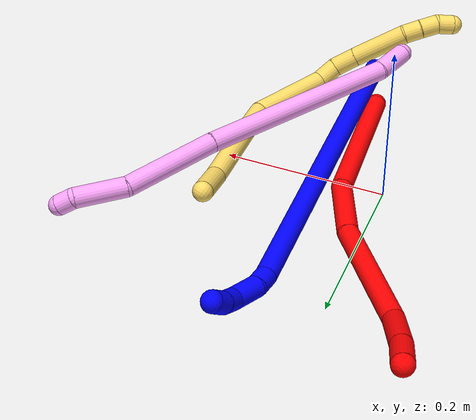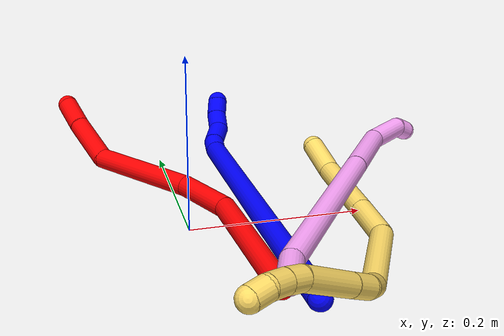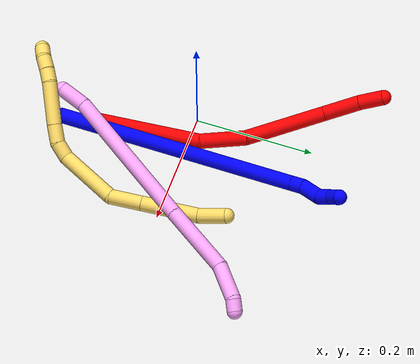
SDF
<sdf version="1.7">
 <world name="default">
  <model name="photoneo_s_sensor">
   <static>1</static>
   <pose>0 0 2 1.57079 1.57079 3.14159</pose>
   <link name="link">
    <inertial><mass>0.1</mass></inertial>
    <sensor name="sensor" type="depth">
     <update_rate>30</update_rate>
     <camera>
      <horizontal_fov>1.22</horizontal_fov>
      <image><width>1920</width><height>1200</height><format>B8G8R8</format></image>
      <clip><near>0.1</near><far>4</far></clip>
      <depth_camera><output>points</output></depth_camera>
     </camera>
     <plugin name="camera_plugin" filename="libgazebo_ros_depth_camera.so">
      <baseline>0.2</baseline>
      <alwaysOn>1</alwaysOn>
      <updateRate>0.0</updateRate>
      <cameraName>camera_ir</cameraName>
      <imageTopicName>/camera/color/image_raw</imageTopicName>
      <cameraInfoTopicName>/camera/color/camera_info</cameraInfoTopicName>
      <depthImageTopicName>/camera/depth/image_raw</depthImageTopicName>
      <depthImageCameraInfoTopicName>/camera/depth/camera_info</depthImageCameraInfoTopicName>
      <pointCloudTopicName>/camera/depth/points</pointCloudTopicName>
      <frameName>fr_optical</frameName>
      <pointCloudCutoff>0.1</pointCloudCutoff>
      <pointCloudCutoffMax>2.0</pointCloudCutoffMax>
      <distortionK1>0</distortionK1>
      <distortionK2>0</distortionK2>
      <distortionK3>0</distortionK3>
      <distortionT1>0</distortionT1>
      <distortionT2>0</distortionT2>
      <CxPrime>0</CxPrime>
      <Cx>0</Cx>
      <Cy>0</Cy>
      <focalLength>0</focalLength>
      <hackBaseline>0</hackBaseline>
     </plugin>
    </sensor>
   </link>
  </model>
  <model name="bin">
   <static>1</static>
   <link name="bottom">
    <collision name="collision-bottom">
     <pose>0 0 -0.01 0 -0 0</pose>
     <geometry><box><size>0.8 0.6 0.02</size></box></geometry>
     <surface>
      <friction><ode><mu>100</mu><mu2>100</mu2></ode></friction>
      <contact><collide_bitmask>65535</collide_bitmask></contact>
     </surface>
    </collision>
   </link>
   <link name="west_wall">
    <collision name="collision-west_wall">
     <pose>-0.41 0 0.1 0 -0 0</pose>
     <geometry><box><size>0.02 0.6 0.2</size></box></geometry>
     <surface>
      <friction><ode><mu>100</mu><mu2>100</mu2></ode></friction>
      <contact><collide_bitmask>65535</collide_bitmask></contact>
     </surface>
    </collision>
   </link>
   <link name="east_wall">
    <collision name="collision-east_wall">
     <pose>0.41 0 0.1 0 -0 0</pose>
     <geometry><box><size>0.02 0.6 0.2</size></box></geometry>
     <surface>
      <friction><ode><mu>100</mu><mu2>100</mu2></ode></friction>
      <contact><collide_bitmask>65535</collide_bitmask></contact>
     </surface>
    </collision>
   </link>
   <link name="south_wall">
    <collision name="collision-south_wall">
     <pose>0 -0.31 0.1 0 -0 0</pose>
     <geometry><box><size>0.8 0.02 0.2</size></box></geometry>
     <surface>
      <friction><ode><mu>100</mu><mu2>100</mu2></ode></friction>
      <contact><collide_bitmask>65535</collide_bitmask></contact>
     </surface>
    </collision>
   </link>
   <link name="north_wall">
    <collision name="collision-north_wall">
     <pose>0 0.31 0.1 0 -0 0</pose>
     <geometry><box><size>0.8 0.02 0.2</size></box></geometry>
     <surface>
      <friction><ode><mu>100</mu><mu2>100</mu2></ode></friction>
      <contact><collide_bitmask>65535</collide_bitmask></contact>
     </surface>
    </collision>
   </link>
  </model>
  <model name="1">
   <static>0</static>
   <link name="1">
    <collision name="collision-cylinder-e_1_1_4">
     <pose>-0.087828 0.131945 0.120227 -0.831834 -0.457242 0.204831</pose>
     <geometry><cylinder><radius>0.0125</radius><length>0.397883</length></cylinder></geometry>
     <surface>
      <friction><ode><mu>1.16</mu><mu2>1.16</mu2><slip1>0</slip1><slip2>0</slip2></ode></friction>
      <contact><ode><kp>1e+06</kp><kd>1</kd><max_vel>0</max_vel><min_depth>0.001</min_depth></ode></contact>
     </surface>
    </collision>
    <visual name="visual-cylinder-e_1_1_4">
     <pose>-0.087828 0.131945 0.120227 -0.831834 -0.457242 0.204831</pose>
     <geometry><cylinder><radius>0.0125</radius><length>0.397883</length></cylinder></geometry>
     <material><ambient>0 0 1 1</ambient></material>
    </visual>
    <collision name="collision-cylinder-e_2_4_5">
     <pose>-0.182317 0.270169 0.245925 -0.853988 -0.674672 0.316498</pose>
     <geometry><cylinder><radius>0.0125</radius><length>0.021328</length></cylinder></geometry>
     <surface>
      <friction><ode><mu>1.16</mu><mu2>1.16</mu2><slip1>0</slip1><slip2>0</slip2></ode></friction>
      <contact><ode><kp>1e+06</kp><kd>1</kd><max_vel>0</max_vel><min_depth>0.001</min_depth></ode></contact>
     </surface>
    </collision>
    <visual name="visual-cylinder-e_2_4_5">
     <pose>-0.182317 0.270169 0.245925 -0.853988 -0.674672 0.316498</pose>
     <geometry><cylinder><radius>0.0125</radius><length>0.021328</length></cylinder></geometry>
     <material><ambient>0 0 1 1</ambient></material>
    </visual>
    <collision name="collision-cylinder-e_3_5_6">
     <pose>-0.201928 0.281911 0.261816 -0.482958 -0.833285 0.217131</pose>
     <geometry><cylinder><radius>0.0125</radius><length>0.034995</length></cylinder></geometry>
     <surface>
      <friction><ode><mu>1.16</mu><mu2>1.16</mu2><slip1>0</slip1><slip2>0</slip2></ode></friction>
      <contact><ode><kp>1e+06</kp><kd>1</kd><max_vel>0</max_vel><min_depth>0.001</min_depth></ode></contact>
     </surface>
    </collision>
    <visual name="visual-cylinder-e_3_5_6">
     <pose>-0.201928 0.281911 0.261816 -0.482958 -0.833285 0.217131</pose>
     <geometry><cylinder><radius>0.0125</radius><length>0.034995</length></cylinder></geometry>
     <material><ambient>0 0 1 1</ambient></material>
    </visual>
    <collision name="collision-cylinder-e_4_6_7">
     <pose>-0.224983 0.293827 0.274083 -1.29211 -0.984528 0.768537</pose>
     <geometry><cylinder><radius>0.0125</radius><length>0.024259</length></cylinder></geometry>
     <surface>
      <friction><ode><mu>1.16</mu><mu2>1.16</mu2><slip1>0</slip1><slip2>0</slip2></ode></friction>
      <contact><ode><kp>1e+06</kp><kd>1</kd><max_vel>0</max_vel><min_depth>0.001</min_depth></ode></contact>
     </surface>
    </collision>
    <visual name="visual-cylinder-e_4_6_7">
     <pose>-0.224983 0.293827 0.274083 -1.29211 -0.984528 0.768537</pose>
     <geometry><cylinder><radius>0.0125</radius><length>0.024259</length></cylinder></geometry>
     <material><ambient>0 0 1 1</ambient></material>
    </visual>
    <collision name="collision-cylinder-e_5_7_2">
     <pose>-0.245211 0.303927 0.276314 -1.46575 -1.22314 1.1261</pose>
     <geometry><cylinder><radius>0.0125</radius><length>0.021534</length></cylinder></geometry>
     <surface>
      <friction><ode><mu>1.16</mu><mu2>1.16</mu2><slip1>0</slip1><slip2>0</slip2></ode></friction>
      <contact><ode><kp>1e+06</kp><kd>1</kd><max_vel>0</max_vel><min_depth>0.001</min_depth></ode></contact>
     </surface>
    </collision>
    <visual name="visual-cylinder-e_5_7_2">
     <pose>-0.245211 0.303927 0.276314 -1.46575 -1.22314 1.1261</pose>
     <geometry><cylinder><radius>0.0125</radius><length>0.021534</length></cylinder></geometry>
     <material><ambient>0 0 1 1</ambient></material>
    </visual>
    <collision name="collision-sphere-2">
     <pose>-0.255334 0.307575 0.276698 0 -0 0</pose>
     <geometry><sphere><radius>0.0125</radius></sphere></geometry>
     <surface>
      <friction><ode><mu>1.16</mu><mu2>1.16</mu2><slip1>0</slip1><slip2>0</slip2></ode></friction>
      <contact><ode><kp>1e+06</kp><kd>1</kd><max_vel>0</max_vel><min_depth>0.001</min_depth></ode></contact>
     </surface>
    </collision>
    <visual name="visual-sphere-2">
     <pose>-0.255334 0.307575 0.276698 0 -0 0</pose>
     <geometry><sphere><radius>0.0125</radius></sphere></geometry>
     <material><ambient>0 0 1 1</ambient></material>
    </visual>
    <collision name="collision-sphere-7">
     <pose>-0.235088 0.300279 0.275929 0 -0 0</pose>
     <geometry><sphere><radius>0.0125</radius></sphere></geometry>
     <surface>
      <friction><ode><mu>1.16</mu><mu2>1.16</mu2><slip1>0</slip1><slip2>0</slip2></ode></friction>
      <contact><ode><kp>1e+06</kp><kd>1</kd><max_vel>0</max_vel><min_depth>0.001</min_depth></ode></contact>
     </surface>
    </collision>
    <visual name="visual-sphere-7">
     <pose>-0.235088 0.300279 0.275929 0 -0 0</pose>
     <geometry><sphere><radius>0.0125</radius></sphere></geometry>
     <material><ambient>0 0 1 1</ambient></material>
    </visual>
    <collision name="collision-sphere-6">
     <pose>-0.214879 0.287375 0.272237 0 -0 0</pose>
     <geometry><sphere><radius>0.0125</radius></sphere></geometry>
     <surface>
      <friction><ode><mu>1.16</mu><mu2>1.16</mu2><slip1>0</slip1><slip2>0</slip2></ode></friction>
      <contact><ode><kp>1e+06</kp><kd>1</kd><max_vel>0</max_vel><min_depth>0.001</min_depth></ode></contact>
     </surface>
    </collision>
    <visual name="visual-sphere-6">
     <pose>-0.214879 0.287375 0.272237 0 -0 0</pose>
     <geometry><sphere><radius>0.0125</radius></sphere></geometry>
     <material><ambient>0 0 1 1</ambient></material>
    </visual>
    <collision name="collision-sphere-5">
     <pose>-0.188978 0.276447 0.251396 0 -0 0</pose>
     <geometry><sphere><radius>0.0125</radius></sphere></geometry>
     <surface>
      <friction><ode><mu>1.16</mu><mu2>1.16</mu2><slip1>0</slip1><slip2>0</slip2></ode></friction>
      <contact><ode><kp>1e+06</kp><kd>1</kd><max_vel>0</max_vel><min_depth>0.001</min_depth></ode></contact>
     </surface>
    </collision>
    <visual name="visual-sphere-5">
     <pose>-0.188978 0.276447 0.251396 0 -0 0</pose>
     <geometry><sphere><radius>0.0125</radius></sphere></geometry>
     <material><ambient>0 0 1 1</ambient></material>
    </visual>
    <collision name="collision-sphere-1">
     <geometry><sphere><radius>0.0125</radius></sphere></geometry>
     <surface>
      <friction><ode><mu>1.16</mu><mu2>1.16</mu2><slip1>0</slip1><slip2>0</slip2></ode></friction>
      <contact><ode><kp>1e+06</kp><kd>1</kd><max_vel>0</max_vel><min_depth>0.001</min_depth></ode></contact>
     </surface>
    </collision>
    <visual name="visual-sphere-1">
     <geometry><sphere><radius>0.0125</radius></sphere></geometry>
     <material><ambient>0 0 1 1</ambient></material>
    </visual>
    <collision name="collision-sphere-4">
     <pose>-0.175655 0.26389 0.240454 0 -0 0</pose>
     <geometry><sphere><radius>0.0125</radius></sphere></geometry>
     <surface>
      <friction><ode><mu>1.16</mu><mu2>1.16</mu2><slip1>0</slip1><slip2>0</slip2></ode></friction>
      <contact><ode><kp>1e+06</kp><kd>1</kd><max_vel>0</max_vel><min_depth>0.001</min_depth></ode></contact>
     </surface>
    </collision>
    <visual name="visual-sphere-4">
     <pose>-0.175655 0.26389 0.240454 0 -0 0</pose>
     <geometry><sphere><radius>0.0125</radius></sphere></geometry>
     <material><ambient>0 0 1 1</ambient></material>
    </visual>
    <inertial>
     <pose>-0.113277 0.163599 0.149686 0 -0 0</pose>
     <mass>0.5</mass>
     <inertia>
      <ixx>0.005574</ixx>
      <ixy>0</ixy>
      <ixz>0</ixz>
      <iyy>0.004817</iyy>
      <iyz>0</iyz>
      <izz>-0.001142</izz>
     </inertia>
    </inertial>
   </link>
   <pose>0.080146 -0.209373 0.028054 3.0215 0.806559 -2.37328</pose>
  </model>
  <model name="2">
   <static>0</static>
   <link name="2">
    <collision name="collision-cylinder-e_1_1_4">
     <pose>-0.005502 0.024894 0.084853 -0.285368 -0.062134 0.008929</pose>
     <geometry><cylinder><radius>0.0125</radius><length>0.177199</length></cylinder></geometry>
     <surface>
      <friction><ode><mu>1.16</mu><mu2>1.16</mu2><slip1>0</slip1><slip2>0</slip2></ode></friction>
      <contact><ode><kp>1e+06</kp><kd>1</kd><max_vel>0</max_vel><min_depth>0.001</min_depth></ode></contact>
     </surface>
    </collision>
    <visual name="visual-cylinder-e_1_1_4">
     <pose>-0.005502 0.024894 0.084853 -0.285368 -0.062134 0.008929</pose>
     <geometry><cylinder><radius>0.0125</radius><length>0.177199</length></cylinder></geometry>
     <material><ambient>1 0 0 1</ambient></material>
    </visual>
    <collision name="collision-cylinder-e_2_4_5">
     <pose>-0.014099 0.072513 0.200652 -0.633388 -0.080448 0.026377</pose>
     <geometry><cylinder><radius>0.0125</radius><length>0.077039</length></cylinder></geometry>
     <surface>
      <friction><ode><mu>1.16</mu><mu2>1.16</mu2><slip1>0</slip1><slip2>0</slip2></ode></friction>
      <contact><ode><kp>1e+06</kp><kd>1</kd><max_vel>0</max_vel><min_depth>0.001</min_depth></ode></contact>
     </surface>
    </collision>
    <visual name="visual-cylinder-e_2_4_5">
     <pose>-0.014099 0.072513 0.200652 -0.633388 -0.080448 0.026377</pose>
     <geometry><cylinder><radius>0.0125</radius><length>0.077039</length></cylinder></geometry>
     <material><ambient>1 0 0 1</ambient></material>
    </visual>
    <collision name="collision-cylinder-e_3_5_6">
     <pose>-0.025948 0.1486 0.275103 -0.886838 -0.126476 0.060134</pose>
     <geometry><cylinder><radius>0.0125</radius><length>0.138805</length></cylinder></geometry>
     <surface>
      <friction><ode><mu>1.16</mu><mu2>1.16</mu2><slip1>0</slip1><slip2>0</slip2></ode></friction>
      <contact><ode><kp>1e+06</kp><kd>1</kd><max_vel>0</max_vel><min_depth>0.001</min_depth></ode></contact>
     </surface>
    </collision>
    <visual name="visual-cylinder-e_3_5_6">
     <pose>-0.025948 0.1486 0.275103 -0.886838 -0.126476 0.060134</pose>
     <geometry><cylinder><radius>0.0125</radius><length>0.138805</length></cylinder></geometry>
     <material><ambient>1 0 0 1</ambient></material>
    </visual>
    <collision name="collision-cylinder-e_4_6_7">
     <pose>-0.050906 0.216665 0.342757 -0.546809 -0.520365 0.149032</pose>
     <geometry><cylinder><radius>0.0125</radius><length>0.065176</length></cylinder></geometry>
     <surface>
      <friction><ode><mu>1.16</mu><mu2>1.16</mu2><slip1>0</slip1><slip2>0</slip2></ode></friction>
      <contact><ode><kp>1e+06</kp><kd>1</kd><max_vel>0</max_vel><min_depth>0.001</min_depth></ode></contact>
     </surface>
    </collision>
    <visual name="visual-cylinder-e_4_6_7">
     <pose>-0.050906 0.216665 0.342757 -0.546809 -0.520365 0.149032</pose>
     <geometry><cylinder><radius>0.0125</radius><length>0.065176</length></cylinder></geometry>
     <material><ambient>1 0 0 1</ambient></material>
    </visual>
    <collision name="collision-cylinder-e_5_7_2">
     <pose>-0.076787 0.239368 0.383604 -0.446927 -0.481739 0.111532</pose>
     <geometry><cylinder><radius>0.0125</radius><length>0.04178</length></cylinder></geometry>
     <surface>
      <friction><ode><mu>1.16</mu><mu2>1.16</mu2><slip1>0</slip1><slip2>0</slip2></ode></friction>
      <contact><ode><kp>1e+06</kp><kd>1</kd><max_vel>0</max_vel><min_depth>0.001</min_depth></ode></contact>
     </surface>
    </collision>
    <visual name="visual-cylinder-e_5_7_2">
     <pose>-0.076787 0.239368 0.383604 -0.446927 -0.481739 0.111532</pose>
     <geometry><cylinder><radius>0.0125</radius><length>0.04178</length></cylinder></geometry>
     <material><ambient>1 0 0 1</ambient></material>
    </visual>
    <collision name="collision-sphere-2">
     <pose>-0.086466 0.247369 0.400298 0 -0 0</pose>
     <geometry><sphere><radius>0.0125</radius></sphere></geometry>
     <surface>
      <friction><ode><mu>1.16</mu><mu2>1.16</mu2><slip1>0</slip1><slip2>0</slip2></ode></friction>
      <contact><ode><kp>1e+06</kp><kd>1</kd><max_vel>0</max_vel><min_depth>0.001</min_depth></ode></contact>
     </surface>
    </collision>
    <visual name="visual-sphere-2">
     <pose>-0.086466 0.247369 0.400298 0 -0 0</pose>
     <geometry><sphere><radius>0.0125</radius></sphere></geometry>
     <material><ambient>1 0 0 1</ambient></material>
    </visual>
    <collision name="collision-sphere-7">
     <pose>-0.067108 0.231367 0.366909 0 -0 0</pose>
     <geometry><sphere><radius>0.0125</radius></sphere></geometry>
     <surface>
      <friction><ode><mu>1.16</mu><mu2>1.16</mu2><slip1>0</slip1><slip2>0</slip2></ode></friction>
      <contact><ode><kp>1e+06</kp><kd>1</kd><max_vel>0</max_vel><min_depth>0.001</min_depth></ode></contact>
     </surface>
    </collision>
    <visual name="visual-sphere-7">
     <pose>-0.067108 0.231367 0.366909 0 -0 0</pose>
     <geometry><sphere><radius>0.0125</radius></sphere></geometry>
     <material><ambient>1 0 0 1</ambient></material>
    </visual>
    <collision name="collision-sphere-6">
     <pose>-0.034703 0.201963 0.318606 0 -0 0</pose>
     <geometry><sphere><radius>0.0125</radius></sphere></geometry>
     <surface>
      <friction><ode><mu>1.16</mu><mu2>1.16</mu2><slip1>0</slip1><slip2>0</slip2></ode></friction>
      <contact><ode><kp>1e+06</kp><kd>1</kd><max_vel>0</max_vel><min_depth>0.001</min_depth></ode></contact>
     </surface>
    </collision>
    <visual name="visual-sphere-6">
     <pose>-0.034703 0.201963 0.318606 0 -0 0</pose>
     <geometry><sphere><radius>0.0125</radius></sphere></geometry>
     <material><ambient>1 0 0 1</ambient></material>
    </visual>
    <collision name="collision-sphere-5">
     <pose>-0.017194 0.095238 0.2316 0 -0 0</pose>
     <geometry><sphere><radius>0.0125</radius></sphere></geometry>
     <surface>
      <friction><ode><mu>1.16</mu><mu2>1.16</mu2><slip1>0</slip1><slip2>0</slip2></ode></friction>
      <contact><ode><kp>1e+06</kp><kd>1</kd><max_vel>0</max_vel><min_depth>0.001</min_depth></ode></contact>
     </surface>
    </collision>
    <visual name="visual-sphere-5">
     <pose>-0.017194 0.095238 0.2316 0 -0 0</pose>
     <geometry><sphere><radius>0.0125</radius></sphere></geometry>
     <material><ambient>1 0 0 1</ambient></material>
    </visual>
    <collision name="collision-sphere-1">
     <geometry><sphere><radius>0.0125</radius></sphere></geometry>
     <surface>
      <friction><ode><mu>1.16</mu><mu2>1.16</mu2><slip1>0</slip1><slip2>0</slip2></ode></friction>
      <contact><ode><kp>1e+06</kp><kd>1</kd><max_vel>0</max_vel><min_depth>0.001</min_depth></ode></contact>
     </surface>
    </collision>
    <visual name="visual-sphere-1">
     <geometry><sphere><radius>0.0125</radius></sphere></geometry>
     <material><ambient>1 0 0 1</ambient></material>
    </visual>
    <collision name="collision-sphere-4">
     <pose>-0.011003 0.049787 0.169705 0 -0 0</pose>
     <geometry><sphere><radius>0.0125</radius></sphere></geometry>
     <surface>
      <friction><ode><mu>1.16</mu><mu2>1.16</mu2><slip1>0</slip1><slip2>0</slip2></ode></friction>
      <contact><ode><kp>1e+06</kp><kd>1</kd><max_vel>0</max_vel><min_depth>0.001</min_depth></ode></contact>
     </surface>
    </collision>
    <visual name="visual-sphere-4">
     <pose>-0.011003 0.049787 0.169705 0 -0 0</pose>
     <geometry><sphere><radius>0.0125</radius></sphere></geometry>
     <material><ambient>1 0 0 1</ambient></material>
    </visual>
    <inertial>
     <pose>-0.024378 0.109492 0.214092 0 -0 0</pose>
     <mass>0.5</mass>
     <inertia>
      <ixx>0.000782</ixx>
      <ixy>0</ixy>
      <ixz>0</ixz>
      <iyy>0.000702</iyy>
      <iyz>0</iyz>
      <izz>-0.000238</izz>
     </inertia>
    </inertial>
   </link>
   <pose>0.059951 -0.157051 0.011496 -1.63915 1.41975 -0.276962</pose>
  </model>
  <model name="4">
   <static>0</static>
   <link name="4">
    <collision name="collision-cylinder-e_1_1_4">
     <pose>0.003941 0.020212 0.010091 -1.10777 0.172709 -0.106978</pose>
     <geometry><cylinder><radius>0.0125</radius><length>0.045865</length></cylinder></geometry>
     <surface>
      <friction><ode><mu>1.16</mu><mu2>1.16</mu2><slip1>0</slip1><slip2>0</slip2></ode></friction>
      <contact><ode><kp>1e+06</kp><kd>1</kd><max_vel>0</max_vel><min_depth>0.001</min_depth></ode></contact>
     </surface>
    </collision>
    <visual name="visual-cylinder-e_1_1_4">
     <pose>0.003941 0.020212 0.010091 -1.10777 0.172709 -0.106978</pose>
     <geometry><cylinder><radius>0.0125</radius><length>0.045865</length></cylinder></geometry>
     <material><ambient>1 0.65098 0.996078 1</ambient></material>
    </visual>
    <collision name="collision-cylinder-e_2_4_5">
     <pose>0.059525 0.141763 0.075789 -1.06892 0.420166 -0.251103</pose>
     <geometry><cylinder><radius>0.0125</radius><length>0.253209</length></cylinder></geometry>
     <surface>
      <friction><ode><mu>1.16</mu><mu2>1.16</mu2><slip1>0</slip1><slip2>0</slip2></ode></friction>
      <contact><ode><kp>1e+06</kp><kd>1</kd><max_vel>0</max_vel><min_depth>0.001</min_depth></ode></contact>
     </surface>
    </collision>
    <visual name="visual-cylinder-e_2_4_5">
     <pose>0.059525 0.141763 0.075789 -1.06892 0.420166 -0.251103</pose>
     <geometry><cylinder><radius>0.0125</radius><length>0.253209</length></cylinder></geometry>
     <material><ambient>1 0.65098 0.996078 1</ambient></material>
    </visual>
    <collision name="collision-cylinder-e_3_5_6">
     <pose>0.133103 0.292859 0.154695 -1.13291 0.379838 -0.243308</pose>
     <geometry><cylinder><radius>0.0125</radius><length>0.118317</length></cylinder></geometry>
     <surface>
      <friction><ode><mu>1.16</mu><mu2>1.16</mu2><slip1>0</slip1><slip2>0</slip2></ode></friction>
      <contact><ode><kp>1e+06</kp><kd>1</kd><max_vel>0</max_vel><min_depth>0.001</min_depth></ode></contact>
     </surface>
    </collision>
    <visual name="visual-cylinder-e_3_5_6">
     <pose>0.133103 0.292859 0.154695 -1.13291 0.379838 -0.243308</pose>
     <geometry><cylinder><radius>0.0125</radius><length>0.118317</length></cylinder></geometry>
     <material><ambient>1 0.65098 0.996078 1</ambient></material>
    </visual>
    <collision name="collision-cylinder-e_4_6_7">
     <pose>0.175527 0.363528 0.189066 -1.08373 0.713649 -0.441493</pose>
     <geometry><cylinder><radius>0.0125</radius><length>0.062602</length></cylinder></geometry>
     <surface>
      <friction><ode><mu>1.16</mu><mu2>1.16</mu2><slip1>0</slip1><slip2>0</slip2></ode></friction>
      <contact><ode><kp>1e+06</kp><kd>1</kd><max_vel>0</max_vel><min_depth>0.001</min_depth></ode></contact>
     </surface>
    </collision>
    <visual name="visual-cylinder-e_4_6_7">
     <pose>0.175527 0.363528 0.189066 -1.08373 0.713649 -0.441493</pose>
     <geometry><cylinder><radius>0.0125</radius><length>0.062602</length></cylinder></geometry>
     <material><ambient>1 0.65098 0.996078 1</ambient></material>
    </visual>
    <collision name="collision-cylinder-e_5_7_2">
     <pose>0.202981 0.391503 0.198852 -1.75131 0.770175 -0.904756</pose>
     <geometry><cylinder><radius>0.0125</radius><length>0.020007</length></cylinder></geometry>
     <surface>
      <friction><ode><mu>1.16</mu><mu2>1.16</mu2><slip1>0</slip1><slip2>0</slip2></ode></friction>
      <contact><ode><kp>1e+06</kp><kd>1</kd><max_vel>0</max_vel><min_depth>0.001</min_depth></ode></contact>
     </surface>
    </collision>
    <visual name="visual-cylinder-e_5_7_2">
     <pose>0.202981 0.391503 0.198852 -1.75131 0.770175 -0.904756</pose>
     <geometry><cylinder><radius>0.0125</radius><length>0.020007</length></cylinder></geometry>
     <material><ambient>1 0.65098 0.996078 1</ambient></material>
    </visual>
    <collision name="collision-sphere-2">
     <pose>0.209947 0.398567 0.197563 0 -0 0</pose>
     <geometry><sphere><radius>0.0125</radius></sphere></geometry>
     <surface>
      <friction><ode><mu>1.16</mu><mu2>1.16</mu2><slip1>0</slip1><slip2>0</slip2></ode></friction>
      <contact><ode><kp>1e+06</kp><kd>1</kd><max_vel>0</max_vel><min_depth>0.001</min_depth></ode></contact>
     </surface>
    </collision>
    <visual name="visual-sphere-2">
     <pose>0.209947 0.398567 0.197563 0 -0 0</pose>
     <geometry><sphere><radius>0.0125</radius></sphere></geometry>
     <material><ambient>1 0.65098 0.996078 1</ambient></material>
    </visual>
    <collision name="collision-sphere-7">
     <pose>0.196016 0.384439 0.200141 0 -0 0</pose>
     <geometry><sphere><radius>0.0125</radius></sphere></geometry>
     <surface>
      <friction><ode><mu>1.16</mu><mu2>1.16</mu2><slip1>0</slip1><slip2>0</slip2></ode></friction>
      <contact><ode><kp>1e+06</kp><kd>1</kd><max_vel>0</max_vel><min_depth>0.001</min_depth></ode></contact>
     </surface>
    </collision>
    <visual name="visual-sphere-7">
     <pose>0.196016 0.384439 0.200141 0 -0 0</pose>
     <geometry><sphere><radius>0.0125</radius></sphere></geometry>
     <material><ambient>1 0.65098 0.996078 1</ambient></material>
    </visual>
    <collision name="collision-sphere-6">
     <pose>0.155037 0.342617 0.177991 0 -0 0</pose>
     <geometry><sphere><radius>0.0125</radius></sphere></geometry>
     <surface>
      <friction><ode><mu>1.16</mu><mu2>1.16</mu2><slip1>0</slip1><slip2>0</slip2></ode></friction>
      <contact><ode><kp>1e+06</kp><kd>1</kd><max_vel>0</max_vel><min_depth>0.001</min_depth></ode></contact>
     </surface>
    </collision>
    <visual name="visual-sphere-6">
     <pose>0.155037 0.342617 0.177991 0 -0 0</pose>
     <geometry><sphere><radius>0.0125</radius></sphere></geometry>
     <material><ambient>1 0.65098 0.996078 1</ambient></material>
    </visual>
    <collision name="collision-sphere-5">
     <pose>0.111169 0.243101 0.131398 0 -0 0</pose>
     <geometry><sphere><radius>0.0125</radius></sphere></geometry>
     <surface>
      <friction><ode><mu>1.16</mu><mu2>1.16</mu2><slip1>0</slip1><slip2>0</slip2></ode></friction>
      <contact><ode><kp>1e+06</kp><kd>1</kd><max_vel>0</max_vel><min_depth>0.001</min_depth></ode></contact>
     </surface>
    </collision>
    <visual name="visual-sphere-5">
     <pose>0.111169 0.243101 0.131398 0 -0 0</pose>
     <geometry><sphere><radius>0.0125</radius></sphere></geometry>
     <material><ambient>1 0.65098 0.996078 1</ambient></material>
    </visual>
    <collision name="collision-sphere-1">
     <geometry><sphere><radius>0.0125</radius></sphere></geometry>
     <surface>
      <friction><ode><mu>1.16</mu><mu2>1.16</mu2><slip1>0</slip1><slip2>0</slip2></ode></friction>
      <contact><ode><kp>1e+06</kp><kd>1</kd><max_vel>0</max_vel><min_depth>0.001</min_depth></ode></contact>
     </surface>
    </collision>
    <visual name="visual-sphere-1">
     <geometry><sphere><radius>0.0125</radius></sphere></geometry>
     <material><ambient>1 0.65098 0.996078 1</ambient></material>
    </visual>
    <collision name="collision-sphere-4">
     <pose>0.007882 0.040425 0.020181 0 -0 0</pose>
     <geometry><sphere><radius>0.0125</radius></sphere></geometry>
     <surface>
      <friction><ode><mu>1.16</mu><mu2>1.16</mu2><slip1>0</slip1><slip2>0</slip2></ode></friction>
      <contact><ode><kp>1e+06</kp><kd>1</kd><max_vel>0</max_vel><min_depth>0.001</min_depth></ode></contact>
     </surface>
    </collision>
    <visual name="visual-sphere-4">
     <pose>0.007882 0.040425 0.020181 0 -0 0</pose>
     <geometry><sphere><radius>0.0125</radius></sphere></geometry>
     <material><ambient>1 0.65098 0.996078 1</ambient></material>
    </visual>
    <inertial>
     <pose>0.092102 0.204127 0.107542 0 -0 0</pose>
     <mass>0.5</mass>
     <inertia>
      <ixx>0.001026</ixx>
      <ixy>0</ixy>
      <ixz>0</ixz>
      <iyy>0.000528</iyy>
      <iyz>0</iyz>
      <izz>-0.001847</izz>
     </inertia>
    </inertial>
   </link>
   <pose>0.047209 -0.218161 0.05509 -0.550023 -0.015047 -0.183222</pose>
  </model>
  <model name="5">
   <static>0</static>
   <link name="5">
    <collision name="collision-cylinder-e_1_1_4">
     <pose>0.006027 -0.019495 0.013134 0.977959 0.250974 0.134042</pose>
     <geometry><cylinder><radius>0.0125</radius><length>0.048534</length></cylinder></geometry>
     <surface>
      <friction><ode><mu>1.16</mu><mu2>1.16</mu2><slip1>0</slip1><slip2>0</slip2></ode></friction>
      <contact><ode><kp>1e+06</kp><kd>1</kd><max_vel>0</max_vel><min_depth>0.001</min_depth></ode></contact>
     </surface>
    </collision>
    <visual name="visual-cylinder-e_1_1_4">
     <pose>0.006027 -0.019495 0.013134 0.977959 0.250974 0.134042</pose>
     <geometry><cylinder><radius>0.0125</radius><length>0.048534</length></cylinder></geometry>
     <material><ambient>1 0.858824 0.4 1</ambient></material>
    </visual>
    <collision name="collision-cylinder-e_2_4_5">
     <pose>0.023678 -0.069206 0.061779 0.704983 0.244327 0.090265</pose>
     <geometry><cylinder><radius>0.0125</radius><length>0.096108</length></cylinder></geometry>
     <surface>
      <friction><ode><mu>1.16</mu><mu2>1.16</mu2><slip1>0</slip1><slip2>0</slip2></ode></friction>
      <contact><ode><kp>1e+06</kp><kd>1</kd><max_vel>0</max_vel><min_depth>0.001</min_depth></ode></contact>
     </surface>
    </collision>
    <visual name="visual-cylinder-e_2_4_5">
     <pose>0.023678 -0.069206 0.061779 0.704983 0.244327 0.090265</pose>
     <geometry><cylinder><radius>0.0125</radius><length>0.096108</length></cylinder></geometry>
     <material><ambient>1 0.858824 0.4 1</ambient></material>
    </visual>
    <collision name="collision-cylinder-e_3_5_6">
     <pose>0.041571 -0.116775 0.117291 0.714672 0.232458 0.087129</pose>
     <geometry><cylinder><radius>0.0125</radius><length>0.054423</length></cylinder></geometry>
     <surface>
      <friction><ode><mu>1.16</mu><mu2>1.16</mu2><slip1>0</slip1><slip2>0</slip2></ode></friction>
      <contact><ode><kp>1e+06</kp><kd>1</kd><max_vel>0</max_vel><min_depth>0.001</min_depth></ode></contact>
     </surface>
    </collision>
    <visual name="visual-cylinder-e_3_5_6">
     <pose>0.041571 -0.116775 0.117291 0.714672 0.232458 0.087129</pose>
     <geometry><cylinder><radius>0.0125</radius><length>0.054423</length></cylinder></geometry>
     <material><ambient>1 0.858824 0.4 1</ambient></material>
    </visual>
    <collision name="collision-cylinder-e_4_6_7">
     <pose>0.035043 -0.160088 0.181523 0.530734 -0.244518 -0.066762</pose>
     <geometry><cylinder><radius>0.0125</radius><length>0.105718</length></cylinder></geometry>
     <surface>
      <friction><ode><mu>1.16</mu><mu2>1.16</mu2><slip1>0</slip1><slip2>0</slip2></ode></friction>
      <contact><ode><kp>1e+06</kp><kd>1</kd><max_vel>0</max_vel><min_depth>0.001</min_depth></ode></contact>
     </surface>
    </collision>
    <visual name="visual-cylinder-e_4_6_7">
     <pose>0.035043 -0.160088 0.181523 0.530734 -0.244518 -0.066762</pose>
     <geometry><cylinder><radius>0.0125</radius><length>0.105718</length></cylinder></geometry>
     <material><ambient>1 0.858824 0.4 1</ambient></material>
    </visual>
    <collision name="collision-cylinder-e_5_7_8">
     <pose>0.01889 -0.186587 0.239192 0.040114 -0.244567 -0.004931</pose>
     <geometry><cylinder><radius>0.0125</radius><length>0.027723</length></cylinder></geometry>
     <surface>
      <friction><ode><mu>1.16</mu><mu2>1.16</mu2><slip1>0</slip1><slip2>0</slip2></ode></friction>
      <contact><ode><kp>1e+06</kp><kd>1</kd><max_vel>0</max_vel><min_depth>0.001</min_depth></ode></contact>
     </surface>
    </collision>
    <visual name="visual-cylinder-e_5_7_8">
     <pose>0.01889 -0.186587 0.239192 0.040114 -0.244567 -0.004931</pose>
     <geometry><cylinder><radius>0.0125</radius><length>0.027723</length></cylinder></geometry>
     <material><ambient>1 0.858824 0.4 1</ambient></material>
    </visual>
    <collision name="collision-cylinder-e_6_8_9">
     <pose>0.007302 -0.184786 0.265297 -0.182692 -0.568652 0.053527</pose>
     <geometry><cylinder><radius>0.0125</radius><length>0.030574</length></cylinder></geometry>
     <surface>
      <friction><ode><mu>1.16</mu><mu2>1.16</mu2><slip1>0</slip1><slip2>0</slip2></ode></friction>
      <contact><ode><kp>1e+06</kp><kd>1</kd><max_vel>0</max_vel><min_depth>0.001</min_depth></ode></contact>
     </surface>
    </collision>
    <visual name="visual-cylinder-e_6_8_9">
     <pose>0.007302 -0.184786 0.265297 -0.182692 -0.568652 0.053527</pose>
     <geometry><cylinder><radius>0.0125</radius><length>0.030574</length></cylinder></geometry>
     <material><ambient>1 0.858824 0.4 1</ambient></material>
    </visual>
    <collision name="collision-cylinder-e_7_9_10">
     <pose>-0.021505 -0.176107 0.306154 -0.2212 -0.618769 0.070966</pose>
     <geometry><cylinder><radius>0.0125</radius><length>0.070942</length></cylinder></geometry>
     <surface>
      <friction><ode><mu>1.16</mu><mu2>1.16</mu2><slip1>0</slip1><slip2>0</slip2></ode></friction>
      <contact><ode><kp>1e+06</kp><kd>1</kd><max_vel>0</max_vel><min_depth>0.001</min_depth></ode></contact>
     </surface>
    </collision>
    <visual name="visual-cylinder-e_7_9_10">
     <pose>-0.021505 -0.176107 0.306154 -0.2212 -0.618769 0.070966</pose>
     <geometry><cylinder><radius>0.0125</radius><length>0.070942</length></cylinder></geometry>
     <material><ambient>1 0.858824 0.4 1</ambient></material>
    </visual>
    <collision name="collision-cylinder-e_8_10_11">
     <pose>-0.049088 -0.170028 0.343169 0.029501 -0.671042 -0.010288</pose>
     <geometry><cylinder><radius>0.0125</radius><length>0.022545</length></cylinder></geometry>
     <surface>
      <friction><ode><mu>1.16</mu><mu2>1.16</mu2><slip1>0</slip1><slip2>0</slip2></ode></friction>
      <contact><ode><kp>1e+06</kp><kd>1</kd><max_vel>0</max_vel><min_depth>0.001</min_depth></ode></contact>
     </surface>
    </collision>
    <visual name="visual-cylinder-e_8_10_11">
     <pose>-0.049088 -0.170028 0.343169 0.029501 -0.671042 -0.010288</pose>
     <geometry><cylinder><radius>0.0125</radius><length>0.022545</length></cylinder></geometry>
     <material><ambient>1 0.858824 0.4 1</ambient></material>
    </visual>
    <collision name="collision-cylinder-e_9_11_12">
     <pose>-0.063027 -0.171623 0.360953 0.147871 -0.653044 -0.050156</pose>
     <geometry><cylinder><radius>0.0125</radius><length>0.02281</length></cylinder></geometry>
     <surface>
      <friction><ode><mu>1.16</mu><mu2>1.16</mu2><slip1>0</slip1><slip2>0</slip2></ode></friction>
      <contact><ode><kp>1e+06</kp><kd>1</kd><max_vel>0</max_vel><min_depth>0.001</min_depth></ode></contact>
     </surface>
    </collision>
    <visual name="visual-cylinder-e_9_11_12">
     <pose>-0.063027 -0.171623 0.360953 0.147871 -0.653044 -0.050156</pose>
     <geometry><cylinder><radius>0.0125</radius><length>0.02281</length></cylinder></geometry>
     <material><ambient>1 0.858824 0.4 1</ambient></material>
    </visual>
    <collision name="collision-cylinder-e_10_12_2">
     <pose>-0.077884 -0.176117 0.375701 0.499714 -0.876874 -0.23817</pose>
     <geometry><cylinder><radius>0.0125</radius><length>0.020624</length></cylinder></geometry>
     <surface>
      <friction><ode><mu>1.16</mu><mu2>1.16</mu2><slip1>0</slip1><slip2>0</slip2></ode></friction>
      <contact><ode><kp>1e+06</kp><kd>1</kd><max_vel>0</max_vel><min_depth>0.001</min_depth></ode></contact>
     </surface>
    </collision>
    <visual name="visual-cylinder-e_10_12_2">
     <pose>-0.077884 -0.176117 0.375701 0.499714 -0.876874 -0.23817</pose>
     <geometry><cylinder><radius>0.0125</radius><length>0.020624</length></cylinder></geometry>
     <material><ambient>1 0.858824 0.4 1</ambient></material>
    </visual>
    <collision name="collision-sphere-2">
     <pose>-0.085812 -0.179278 0.38149 0 -0 0</pose>
     <geometry><sphere><radius>0.0125</radius></sphere></geometry>
     <surface>
      <friction><ode><mu>1.16</mu><mu2>1.16</mu2><slip1>0</slip1><slip2>0</slip2></ode></friction>
      <contact><ode><kp>1e+06</kp><kd>1</kd><max_vel>0</max_vel><min_depth>0.001</min_depth></ode></contact>
     </surface>
    </collision>
    <visual name="visual-sphere-2">
     <pose>-0.085812 -0.179278 0.38149 0 -0 0</pose>
     <geometry><sphere><radius>0.0125</radius></sphere></geometry>
     <material><ambient>1 0.858824 0.4 1</ambient></material>
    </visual>
    <collision name="collision-sphere-12">
     <pose>-0.069957 -0.172957 0.369912 0 -0 0</pose>
     <geometry><sphere><radius>0.0125</radius></sphere></geometry>
     <surface>
      <friction><ode><mu>1.16</mu><mu2>1.16</mu2><slip1>0</slip1><slip2>0</slip2></ode></friction>
      <contact><ode><kp>1e+06</kp><kd>1</kd><max_vel>0</max_vel><min_depth>0.001</min_depth></ode></contact>
     </surface>
    </collision>
    <visual name="visual-sphere-12">
     <pose>-0.069957 -0.172957 0.369912 0 -0 0</pose>
     <geometry><sphere><radius>0.0125</radius></sphere></geometry>
     <material><ambient>1 0.858824 0.4 1</ambient></material>
    </visual>
    <collision name="collision-sphere-11">
     <pose>-0.056097 -0.170288 0.351993 0 -0 0</pose>
     <geometry><sphere><radius>0.0125</radius></sphere></geometry>
     <surface>
      <friction><ode><mu>1.16</mu><mu2>1.16</mu2><slip1>0</slip1><slip2>0</slip2></ode></friction>
      <contact><ode><kp>1e+06</kp><kd>1</kd><max_vel>0</max_vel><min_depth>0.001</min_depth></ode></contact>
     </surface>
    </collision>
    <visual name="visual-sphere-11">
     <pose>-0.056097 -0.170288 0.351993 0 -0 0</pose>
     <geometry><sphere><radius>0.0125</radius></sphere></geometry>
     <material><ambient>1 0.858824 0.4 1</ambient></material>
    </visual>
    <collision name="collision-sphere-10">
     <pose>-0.042079 -0.169767 0.334345 0 -0 0</pose>
     <geometry><sphere><radius>0.0125</radius></sphere></geometry>
     <surface>
      <friction><ode><mu>1.16</mu><mu2>1.16</mu2><slip1>0</slip1><slip2>0</slip2></ode></friction>
      <contact><ode><kp>1e+06</kp><kd>1</kd><max_vel>0</max_vel><min_depth>0.001</min_depth></ode></contact>
     </surface>
    </collision>
    <visual name="visual-sphere-10">
     <pose>-0.042079 -0.169767 0.334345 0 -0 0</pose>
     <geometry><sphere><radius>0.0125</radius></sphere></geometry>
     <material><ambient>1 0.858824 0.4 1</ambient></material>
    </visual>
    <collision name="collision-sphere-9">
     <pose>-0.00093 -0.182446 0.277964 0 -0 0</pose>
     <geometry><sphere><radius>0.0125</radius></sphere></geometry>
     <surface>
      <friction><ode><mu>1.16</mu><mu2>1.16</mu2><slip1>0</slip1><slip2>0</slip2></ode></friction>
      <contact><ode><kp>1e+06</kp><kd>1</kd><max_vel>0</max_vel><min_depth>0.001</min_depth></ode></contact>
     </surface>
    </collision>
    <visual name="visual-sphere-9">
     <pose>-0.00093 -0.182446 0.277964 0 -0 0</pose>
     <geometry><sphere><radius>0.0125</radius></sphere></geometry>
     <material><ambient>1 0.858824 0.4 1</ambient></material>
    </visual>
    <collision name="collision-sphere-4">
     <pose>0.012053 -0.038991 0.026267 0 -0 0</pose>
     <geometry><sphere><radius>0.0125</radius></sphere></geometry>
     <surface>
      <friction><ode><mu>1.16</mu><mu2>1.16</mu2><slip1>0</slip1><slip2>0</slip2></ode></friction>
      <contact><ode><kp>1e+06</kp><kd>1</kd><max_vel>0</max_vel><min_depth>0.001</min_depth></ode></contact>
     </surface>
    </collision>
    <visual name="visual-sphere-4">
     <pose>0.012053 -0.038991 0.026267 0 -0 0</pose>
     <geometry><sphere><radius>0.0125</radius></sphere></geometry>
     <material><ambient>1 0.858824 0.4 1</ambient></material>
    </visual>
    <collision name="collision-sphere-1">
     <geometry><sphere><radius>0.0125</radius></sphere></geometry>
     <surface>
      <friction><ode><mu>1.16</mu><mu2>1.16</mu2><slip1>0</slip1><slip2>0</slip2></ode></friction>
      <contact><ode><kp>1e+06</kp><kd>1</kd><max_vel>0</max_vel><min_depth>0.001</min_depth></ode></contact>
     </surface>
    </collision>
    <visual name="visual-sphere-1">
     <geometry><sphere><radius>0.0125</radius></sphere></geometry>
     <material><ambient>1 0.858824 0.4 1</ambient></material>
    </visual>
    <collision name="collision-sphere-8">
     <pose>0.015534 -0.187126 0.252631 0 -0 0</pose>
     <geometry><sphere><radius>0.0125</radius></sphere></geometry>
     <surface>
      <friction><ode><mu>1.16</mu><mu2>1.16</mu2><slip1>0</slip1><slip2>0</slip2></ode></friction>
      <contact><ode><kp>1e+06</kp><kd>1</kd><max_vel>0</max_vel><min_depth>0.001</min_depth></ode></contact>
     </surface>
    </collision>
    <visual name="visual-sphere-8">
     <pose>0.015534 -0.187126 0.252631 0 -0 0</pose>
     <geometry><sphere><radius>0.0125</radius></sphere></geometry>
     <material><ambient>1 0.858824 0.4 1</ambient></material>
    </visual>
    <collision name="collision-sphere-5">
     <pose>0.035302 -0.099421 0.097291 0 -0 0</pose>
     <geometry><sphere><radius>0.0125</radius></sphere></geometry>
     <surface>
      <friction><ode><mu>1.16</mu><mu2>1.16</mu2><slip1>0</slip1><slip2>0</slip2></ode></friction>
      <contact><ode><kp>1e+06</kp><kd>1</kd><max_vel>0</max_vel><min_depth>0.001</min_depth></ode></contact>
     </surface>
    </collision>
    <visual name="visual-sphere-5">
     <pose>0.035302 -0.099421 0.097291 0 -0 0</pose>
     <geometry><sphere><radius>0.0125</radius></sphere></geometry>
     <material><ambient>1 0.858824 0.4 1</ambient></material>
    </visual>
    <collision name="collision-sphere-6">
     <pose>0.047839 -0.134129 0.137291 0 -0 0</pose>
     <geometry><sphere><radius>0.0125</radius></sphere></geometry>
     <surface>
      <friction><ode><mu>1.16</mu><mu2>1.16</mu2><slip1>0</slip1><slip2>0</slip2></ode></friction>
      <contact><ode><kp>1e+06</kp><kd>1</kd><max_vel>0</max_vel><min_depth>0.001</min_depth></ode></contact>
     </surface>
    </collision>
    <visual name="visual-sphere-6">
     <pose>0.047839 -0.134129 0.137291 0 -0 0</pose>
     <geometry><sphere><radius>0.0125</radius></sphere></geometry>
     <material><ambient>1 0.858824 0.4 1</ambient></material>
    </visual>
    <collision name="collision-sphere-7">
     <pose>0.022246 -0.186048 0.225754 0 -0 0</pose>
     <geometry><sphere><radius>0.0125</radius></sphere></geometry>
     <surface>
      <friction><ode><mu>1.16</mu><mu2>1.16</mu2><slip1>0</slip1><slip2>0</slip2></ode></friction>
      <contact><ode><kp>1e+06</kp><kd>1</kd><max_vel>0</max_vel><min_depth>0.001</min_depth></ode></contact>
     </surface>
    </collision>
    <visual name="visual-sphere-7">
     <pose>0.022246 -0.186048 0.225754 0 -0 0</pose>
     <geometry><sphere><radius>0.0125</radius></sphere></geometry>
     <material><ambient>1 0.858824 0.4 1</ambient></material>
    </visual>
    <inertial>
     <pose>0.007212 -0.131146 0.184657 0 -0 0</pose>
     <mass>0.5</mass>
     <inertia>
      <ixx>0.000235</ixx>
      <ixy>0</ixy>
      <ixz>0</ixz>
      <iyy>0.000202</iyy>
      <iyz>0</iyz>
      <izz>0.000167</izz>
     </inertia>
    </inertial>
   </link>
   <pose>0.181628 0.113512 0.037208 0.984286 -0.21257 -0.218392</pose>
  </model>
 </world>
</sdf>
